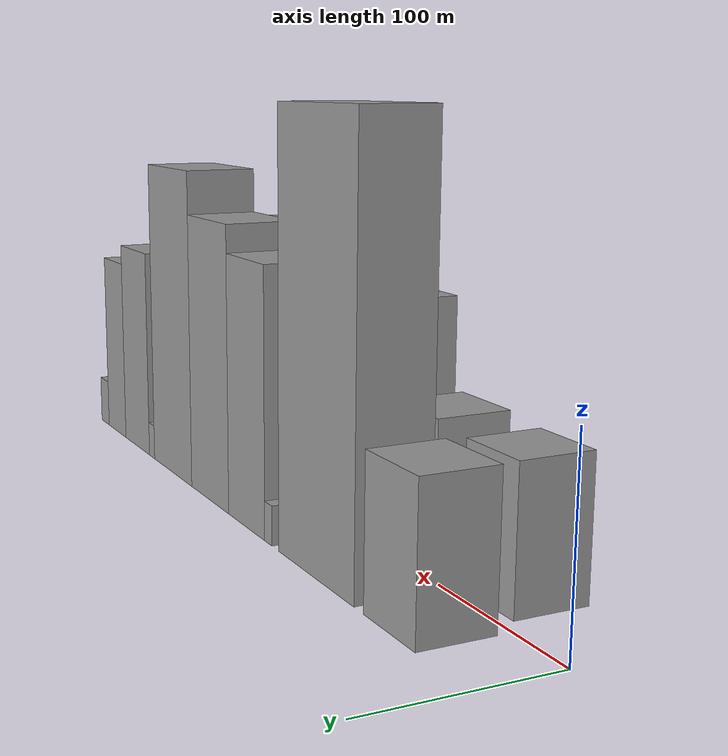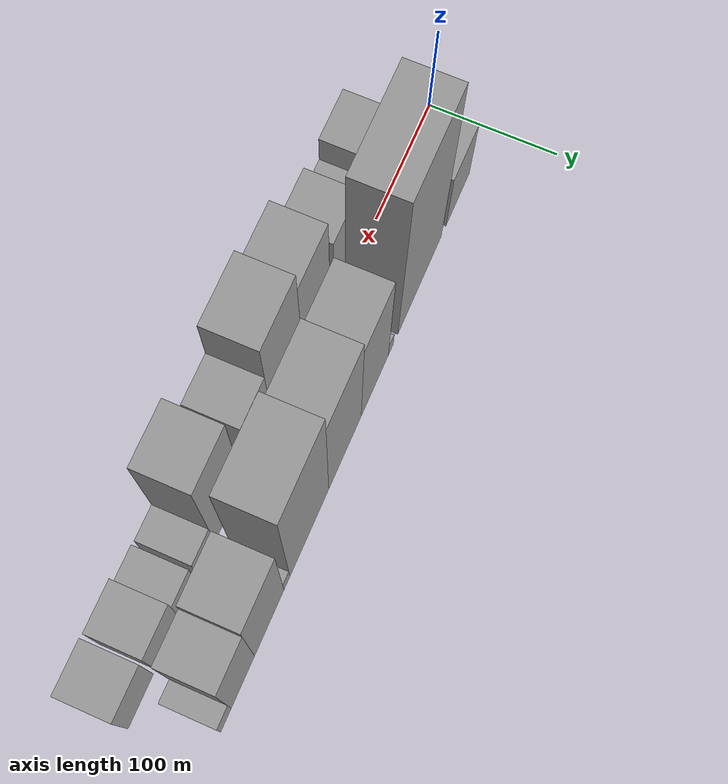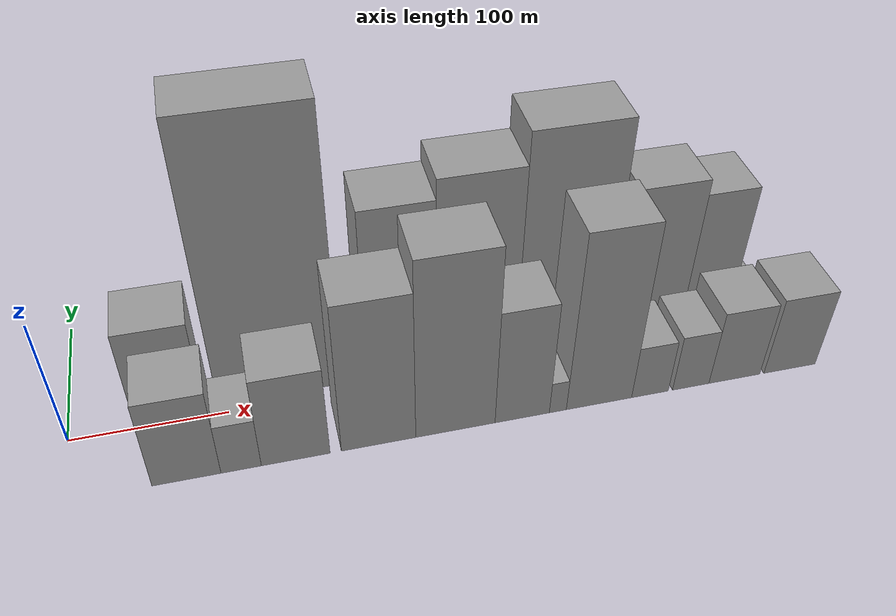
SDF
<sdf version="1.6">
 <world name="default">
  <scene>
   <sky><clouds><speed>12</speed></clouds></sky>
   <ambient>0.4 0.4 0.4 1</ambient>
   <background>0.7 0.7 0.7 1</background>
   <shadows>1</shadows>
  </scene>
  <gravity>0 0 -9.8066</gravity>
  <magnetic_field>6e-06 2.3e-05 -4.2e-05</magnetic_field>
  <physics default="0" name="default_physics" type="ode">
   <ode>
    <solver>
     <type>quick</type>
     <iters>10</iters>
     <sor>1.0</sor>
     <use_dynamic_moi_rescaling>0</use_dynamic_moi_rescaling>
    </solver>
    <constraints>
     <cfm>0</cfm>
     <erp>0.2</erp>
     <contact_max_correcting_vel>100</contact_max_correcting_vel>
     <contact_surface_layer>0.001</contact_surface_layer>
    </constraints>
   </ode>
   <max_step_size>0.004</max_step_size>
   <real_time_factor>1</real_time_factor>
   <real_time_update_rate>250</real_time_update_rate>
  </physics>
  <light name="sun" type="directional">
   <pose>0 0 10 0 0 0</pose>
   <diffuse>0.8 0.8 0.8 1</diffuse>
   <specular>0.2 0.2 0.2 1</specular>
   <attenuation>
    <range>1000</range>
    <constant>0.9</constant>
    <linear>0.01</linear>
    <quadratic>0.001</quadratic>
   </attenuation>
   <direction>-0.5 0.1 -0.9</direction>
  </light>
  <model name="building_1">
   <static>1</static>
   <pose>62.2970 27.5000 0 0.000000 0.000000 1.570796</pose>
   <link name="link">
    <pose>0 0 37.50 0 0 0</pose>
    <collision name="collision"><geometry><box><size>40.0000 44.5940 75.0000</size></box></geometry></collision>
    <visual name="visual">
     <cast_shadows>0</cast_shadows>
     <geometry><box><size>40.0000 44.5940 75.0000</size></box></geometry>
     <material>
      <script>
       <uri>model://grey_wall/materials/scripts</uri>
       <uri>model://grey_wall/materials/textures</uri>
       <name>vrc/grey_wall</name>
      </script>
     </material>
    </visual>
   </link>
  </model>
  <model name="building_2">
   <static>1</static>
   <pose>133.5591 27.5000 0 0.000000 0.000000 1.570796</pose>
   <link name="link">
    <pose>0 0 109.50 0 0 0</pose>
    <collision name="collision"><geometry><box><size>40.0000 79.9302 219.0000</size></box></geometry></collision>
    <visual name="visual">
     <cast_shadows>0</cast_shadows>
     <geometry><box><size>40.0000 79.9302 219.0000</size></box></geometry>
     <material>
      <script>
       <uri>model://grey_wall/materials/scripts</uri>
       <uri>model://grey_wall/materials/textures</uri>
       <name>vrc/grey_wall</name>
      </script>
     </material>
    </visual>
   </link>
  </model>
  <model name="building_3">
   <static>1</static>
   <pose>186.0216 27.5000 0 0.000000 0.000000 1.570796</pose>
   <link name="link">
    <pose>0 0 10.50 0 0 0</pose>
    <collision name="collision"><geometry><box><size>40.0000 8.9949 21.0000</size></box></geometry></collision>
    <visual name="visual">
     <cast_shadows>0</cast_shadows>
     <geometry><box><size>40.0000 8.9949 21.0000</size></box></geometry>
     <material>
      <script>
       <uri>model://grey_wall/materials/scripts</uri>
       <uri>model://grey_wall/materials/textures</uri>
       <name>vrc/grey_wall</name>
      </script>
     </material>
    </visual>
   </link>
  </model>
  <model name="building_4">
   <static>1</static>
   <pose>214.2828 27.5000 0 0.000000 0.000000 1.570796</pose>
   <link name="link">
    <pose>0 0 70.50 0 0 0</pose>
    <collision name="collision"><geometry><box><size>40.0000 47.5276 141.0000</size></box></geometry></collision>
    <visual name="visual">
     <cast_shadows>0</cast_shadows>
     <geometry><box><size>40.0000 47.5276 141.0000</size></box></geometry>
     <material>
      <script>
       <uri>model://grey_wall/materials/scripts</uri>
       <uri>model://grey_wall/materials/textures</uri>
       <name>vrc/grey_wall</name>
      </script>
     </material>
    </visual>
   </link>
  </model>
  <model name="building_5">
   <static>1</static>
   <pose>265.6597 27.5000 0 0.000000 0.000000 1.570796</pose>
   <link name="link">
    <pose>0 0 78.00 0 0 0</pose>
    <collision name="collision"><geometry><box><size>40.0000 55.2261 156.0000</size></box></geometry></collision>
    <visual name="visual">
     <cast_shadows>0</cast_shadows>
     <geometry><box><size>40.0000 55.2261 156.0000</size></box></geometry>
     <material>
      <script>
       <uri>model://grey_wall/materials/scripts</uri>
       <uri>model://grey_wall/materials/textures</uri>
       <name>vrc/grey_wall</name>
      </script>
     </material>
    </visual>
   </link>
  </model>
  <model name="building_6">
   <static>1</static>
   <pose>325.1353 27.5000 0 0.000000 0.000000 1.570796</pose>
   <link name="link">
    <pose>0 0 90.00 0 0 0</pose>
    <collision name="collision"><geometry><box><size>40.0000 63.7252 180.0000</size></box></geometry></collision>
    <visual name="visual">
     <cast_shadows>0</cast_shadows>
     <geometry><box><size>40.0000 63.7252 180.0000</size></box></geometry>
     <material>
      <script>
       <uri>model://grey_wall/materials/scripts</uri>
       <uri>model://grey_wall/materials/textures</uri>
       <name>vrc/grey_wall</name>
      </script>
     </material>
    </visual>
   </link>
  </model>
  <model name="building_7">
   <static>1</static>
   <pose>361.7701 27.5000 0 0.000000 0.000000 1.570796</pose>
   <link name="link">
    <pose>0 0 10.50 0 0 0</pose>
    <collision name="collision"><geometry><box><size>40.0000 9.5444 21.0000</size></box></geometry></collision>
    <visual name="visual">
     <cast_shadows>0</cast_shadows>
     <geometry><box><size>40.0000 9.5444 21.0000</size></box></geometry>
     <material>
      <script>
       <uri>model://grey_wall/materials/scripts</uri>
       <uri>model://grey_wall/materials/textures</uri>
       <name>vrc/grey_wall</name>
      </script>
     </material>
    </visual>
   </link>
  </model>
  <model name="building_8">
   <static>1</static>
   <pose>389.7568 27.5000 0 0.000000 0.000000 1.570796</pose>
   <link name="link">
    <pose>0 0 63.00 0 0 0</pose>
    <collision name="collision"><geometry><box><size>40.0000 46.4289 126.0000</size></box></geometry></collision>
    <visual name="visual">
     <cast_shadows>0</cast_shadows>
     <geometry><box><size>40.0000 46.4289 126.0000</size></box></geometry>
     <material>
      <script>
       <uri>model://grey_wall/materials/scripts</uri>
       <uri>model://grey_wall/materials/textures</uri>
       <name>vrc/grey_wall</name>
      </script>
     </material>
    </visual>
   </link>
  </model>
  <model name="building_9">
   <static>1</static>
   <pose>430.9031 27.5000 0 0.000000 0.000000 1.570796</pose>
   <link name="link">
    <pose>0 0 57.00 0 0 0</pose>
    <collision name="collision"><geometry><box><size>40.0000 35.8636 114.0000</size></box></geometry></collision>
    <visual name="visual">
     <cast_shadows>0</cast_shadows>
     <geometry><box><size>40.0000 35.8636 114.0000</size></box></geometry>
     <material>
      <script>
       <uri>model://grey_wall/materials/scripts</uri>
       <uri>model://grey_wall/materials/textures</uri>
       <name>vrc/grey_wall</name>
      </script>
     </material>
    </visual>
   </link>
  </model>
  <model name="building_10">
   <static>1</static>
   <pose>456.8857 27.5000 0 0.000000 0.000000 1.570796</pose>
   <link name="link">
    <pose>0 0 15.00 0 0 0</pose>
    <collision name="collision"><geometry><box><size>40.0000 16.1014 30.0000</size></box></geometry></collision>
    <visual name="visual">
     <cast_shadows>0</cast_shadows>
     <geometry><box><size>40.0000 16.1014 30.0000</size></box></geometry>
     <material>
      <script>
       <uri>model://grey_wall/materials/scripts</uri>
       <uri>model://grey_wall/materials/textures</uri>
       <name>vrc/grey_wall</name>
      </script>
     </material>
    </visual>
   </link>
  </model>
  <model name="building_11">
   <static>1</static>
   <pose>70.5721 -27.5000 0 0.000000 0.000000 1.570796</pose>
   <link name="link">
    <pose>0 0 36.00 0 0 0</pose>
    <collision name="collision"><geometry><box><size>40.0000 41.1442 72.0000</size></box></geometry></collision>
    <visual name="visual">
     <cast_shadows>0</cast_shadows>
     <geometry><box><size>40.0000 41.1442 72.0000</size></box></geometry>
     <material>
      <script>
       <uri>model://grey_wall/materials/scripts</uri>
       <uri>model://grey_wall/materials/textures</uri>
       <name>vrc/grey_wall</name>
      </script>
     </material>
    </visual>
   </link>
  </model>
  <model name="building_12">
   <static>1</static>
   <pose>103.3553 -27.5000 0 0.000000 0.000000 1.570796</pose>
   <link name="link">
    <pose>0 0 21.00 0 0 0</pose>
    <collision name="collision"><geometry><box><size>40.0000 24.4223 42.0000</size></box></geometry></collision>
    <visual name="visual">
     <cast_shadows>0</cast_shadows>
     <geometry><box><size>40.0000 24.4223 42.0000</size></box></geometry>
     <material>
      <script>
       <uri>model://grey_wall/materials/scripts</uri>
       <uri>model://grey_wall/materials/textures</uri>
       <name>vrc/grey_wall</name>
      </script>
     </material>
    </visual>
   </link>
  </model>
  <model name="building_13">
   <static>1</static>
   <pose>136.7574 -27.5000 0 0.000000 0.000000 1.570796</pose>
   <link name="link">
    <pose>0 0 37.50 0 0 0</pose>
    <collision name="collision"><geometry><box><size>40.0000 42.3819 75.0000</size></box></geometry></collision>
    <visual name="visual">
     <cast_shadows>0</cast_shadows>
     <geometry><box><size>40.0000 42.3819 75.0000</size></box></geometry>
     <material>
      <script>
       <uri>model://grey_wall/materials/scripts</uri>
       <uri>model://grey_wall/materials/textures</uri>
       <name>vrc/grey_wall</name>
      </script>
     </material>
    </visual>
   </link>
  </model>
  <model name="building_14">
   <static>1</static>
   <pose>188.5107 -27.5000 0 0.000000 0.000000 1.570796</pose>
   <link name="link">
    <pose>0 0 61.50 0 0 0</pose>
    <collision name="collision"><geometry><box><size>40.0000 47.1246 123.0000</size></box></geometry></collision>
    <visual name="visual">
     <cast_shadows>0</cast_shadows>
     <geometry><box><size>40.0000 47.1246 123.0000</size></box></geometry>
     <material>
      <script>
       <uri>model://grey_wall/materials/scripts</uri>
       <uri>model://grey_wall/materials/textures</uri>
       <name>vrc/grey_wall</name>
      </script>
     </material>
    </visual>
   </link>
  </model>
  <model name="building_15">
   <static>1</static>
   <pose>237.8343 -27.5000 0 0.000000 0.000000 1.570796</pose>
   <link name="link">
    <pose>0 0 73.50 0 0 0</pose>
    <collision name="collision"><geometry><box><size>40.0000 51.5227 147.0000</size></box></geometry></collision>
    <visual name="visual">
     <cast_shadows>0</cast_shadows>
     <geometry><box><size>40.0000 51.5227 147.0000</size></box></geometry>
     <material>
      <script>
       <uri>model://grey_wall/materials/scripts</uri>
       <uri>model://grey_wall/materials/textures</uri>
       <name>vrc/grey_wall</name>
      </script>
     </material>
    </visual>
   </link>
  </model>
  <model name="building_16">
   <static>1</static>
   <pose>281.6355 -27.5000 0 0.000000 0.000000 1.570796</pose>
   <link name="link">
    <pose>0 0 48.00 0 0 0</pose>
    <collision name="collision"><geometry><box><size>40.0000 36.0795 96.0000</size></box></geometry></collision>
    <visual name="visual">
     <cast_shadows>0</cast_shadows>
     <geometry><box><size>40.0000 36.0795 96.0000</size></box></geometry>
     <material>
      <script>
       <uri>model://grey_wall/materials/scripts</uri>
       <uri>model://grey_wall/materials/textures</uri>
       <name>vrc/grey_wall</name>
      </script>
     </material>
    </visual>
   </link>
  </model>
  <model name="building_17">
   <static>1</static>
   <pose>305.3859 -27.5000 0 0.000000 0.000000 1.570796</pose>
   <link name="link">
    <pose>0 0 13.50 0 0 0</pose>
    <collision name="collision"><geometry><box><size>40.0000 11.4213 27.0000</size></box></geometry></collision>
    <visual name="visual">
     <cast_shadows>0</cast_shadows>
     <geometry><box><size>40.0000 11.4213 27.0000</size></box></geometry>
     <material>
      <script>
       <uri>model://grey_wall/materials/scripts</uri>
       <uri>model://grey_wall/materials/textures</uri>
       <name>vrc/grey_wall</name>
      </script>
     </material>
    </visual>
   </link>
  </model>
  <model name="building_18">
   <static>1</static>
   <pose>333.3992 -27.5000 0 0.000000 0.000000 1.570796</pose>
   <link name="link">
    <pose>0 0 73.50 0 0 0</pose>
    <collision name="collision"><geometry><box><size>40.0000 44.6054 147.0000</size></box></geometry></collision>
    <visual name="visual">
     <cast_shadows>0</cast_shadows>
     <geometry><box><size>40.0000 44.6054 147.0000</size></box></geometry>
     <material>
      <script>
       <uri>model://grey_wall/materials/scripts</uri>
       <uri>model://grey_wall/materials/textures</uri>
       <name>vrc/grey_wall</name>
      </script>
     </material>
    </visual>
   </link>
  </model>
  <model name="building_19">
   <static>1</static>
   <pose>368.4235 -27.5000 0 0.000000 0.000000 1.570796</pose>
   <link name="link">
    <pose>0 0 22.50 0 0 0</pose>
    <collision name="collision"><geometry><box><size>40.0000 25.4431 45.0000</size></box></geometry></collision>
    <visual name="visual">
     <cast_shadows>0</cast_shadows>
     <geometry><box><size>40.0000 25.4431 45.0000</size></box></geometry>
     <material>
      <script>
       <uri>model://grey_wall/materials/scripts</uri>
       <uri>model://grey_wall/materials/textures</uri>
       <name>vrc/grey_wall</name>
      </script>
     </material>
    </visual>
   </link>
  </model>
  <model name="building_20">
   <static>1</static>
   <pose>396.9458 -27.5000 0 0.000000 0.000000 1.570796</pose>
   <link name="link">
    <pose>0 0 24.00 0 0 0</pose>
    <collision name="collision"><geometry><box><size>40.0000 25.6014 48.0000</size></box></geometry></collision>
    <visual name="visual">
     <cast_shadows>0</cast_shadows>
     <geometry><box><size>40.0000 25.6014 48.0000</size></box></geometry>
     <material>
      <script>
       <uri>model://grey_wall/materials/scripts</uri>
       <uri>model://grey_wall/materials/textures</uri>
       <name>vrc/grey_wall</name>
      </script>
     </material>
    </visual>
   </link>
  </model>
  <model name="building_21">
   <static>1</static>
   <pose>427.9629 -27.5000 0 0.000000 0.000000 1.570796</pose>
   <link name="link">
    <pose>0 0 31.50 0 0 0</pose>
    <collision name="collision"><geometry><box><size>40.0000 36.4329 63.0000</size></box></geometry></collision>
    <visual name="visual">
     <cast_shadows>0</cast_shadows>
     <geometry><box><size>40.0000 36.4329 63.0000</size></box></geometry>
     <material>
      <script>
       <uri>model://grey_wall/materials/scripts</uri>
       <uri>model://grey_wall/materials/textures</uri>
       <name>vrc/grey_wall</name>
      </script>
     </material>
    </visual>
   </link>
  </model>
  <model name="building_22">
   <static>1</static>
   <pose>467.8389 -27.5000 0 0.000000 0.000000 1.570796</pose>
   <link name="link">
    <pose>0 0 33.00 0 0 0</pose>
    <collision name="collision"><geometry><box><size>40.0000 37.3191 66.0000</size></box></geometry></collision>
    <visual name="visual">
     <cast_shadows>0</cast_shadows>
     <geometry><box><size>40.0000 37.3191 66.0000</size></box></geometry>
     <material>
      <script>
       <uri>model://grey_wall/materials/scripts</uri>
       <uri>model://grey_wall/materials/textures</uri>
       <name>vrc/grey_wall</name>
      </script>
     </material>
    </visual>
   </link>
  </model>
 </world>
</sdf>
